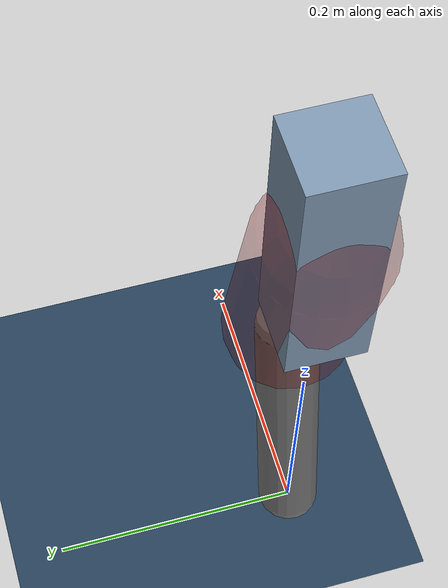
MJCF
<mujoco model="Hopper2D">
	<compiler inertiafromgeom="true" angle="radian" />
	<option timestep="0.001" integrator="implicit" cone="elliptic" solver="Newton" tolerance="1e-10" />

	<default>
		<geom contype="1" conaffinity="1" condim="3" friction="2 0.005 0.0001" solref="0.005 1" />
		<joint limited="true" damping="0.1" />
	</default>

	<asset>
		<texture name="skybox" type="skybox" builtin="gradient" rgb1=".4 .6 .8" rgb2="0 0 0" width="800" height="800" />
		<texture name="grid" type="2d" builtin="checker" rgb1=".1 .2 .3" rgb2=".2 .3 .4" width="300" height="300" mark="edge" markrgb=".2 .3 .4" />
		<material name="ground" texture="grid" texrepeat="1 1" texuniform="true" reflectance="0.1" />
		<material name="leg" rgba="0.5 0.6 0.7 1" />
	</asset>

	<worldbody>

		<geom name="floor" type="plane" size="5 5 0.25" material="ground" />

		<light directional="false" diffuse="0.8 0.8 0.8" specular="0.3 0.3 0.3" pos="0 0 2" dir="0 0 -1" />
		<light mode="targetbodycom" target="base" directional="false" diffuse="0.8 0.8 0.8" specular="0.3 0.3 0.3" pos="0 0 2" dir="0 0 -1" />

		<camera name="fixed" pos="0 -2 1" xyaxes="1 0 0 0 0 1" />
		<camera name="tracking" mode="trackcom" pos="0 -3 1" />

		<body name="root" pos="0 0 0.38163110657911803">
			<joint name="slide_x" type="slide" axis="1 0 0" range="-100 100" />
			<joint name="slide_z" type="slide" axis="0 0 1" range="0 10" />

			<body name="base" pos="0 0 0">
				<geom name="torso" type="box" size="0.03 0.03 0.1" mass="3.168" material="leg" />

				<body name="link1" pos="0 0 0" euler="0 1.31470917575239 0">
					<joint type="hinge" axis="0 -1 0" pos="0 0 0" name="hinge1" limited="true" range="-3.14 3.14" stiffness="0" damping="0.1" />
					<geom name="thigh" type="capsule" fromto="0 0 0 0.1722527863935961 0 0" size="0.05" rgba="0.5 0 0 0.3" mass="0.6617066873446307" />

					<body name="link2" pos="0.1722527863935961 0 0" euler="0 0.4563076806512589 0">
						<joint type="hinge" axis="0 -1 0" pos="0 0 0" name="hinge2" limited="true" range="-3.14 3.14" stiffness="0" damping="0.1" />
						<geom name="shank" type="capsule" fromto="0 0 0 0.21937832018552192 0 0" size="0.025" mass="0.41714048816696975" />

					</body>
				</body>
			</body>
		</body>
	</worldbody>

	<actuator>
		<motor name="torque1" joint="hinge1" ctrlrange="-95.07282028210186 95.07282028210186" ctrllimited="true" gear="1" />
		<motor name="torque2" joint="hinge2" ctrlrange="-192.80152364148438 192.80152364148438" ctrllimited="true" gear="1" />
	</actuator>
</mujoco>
